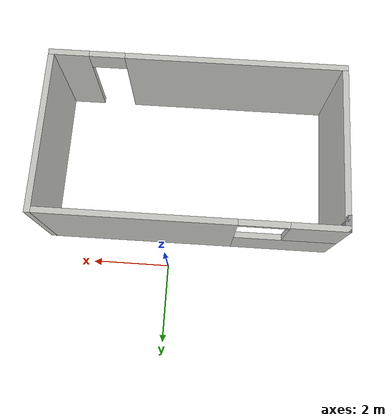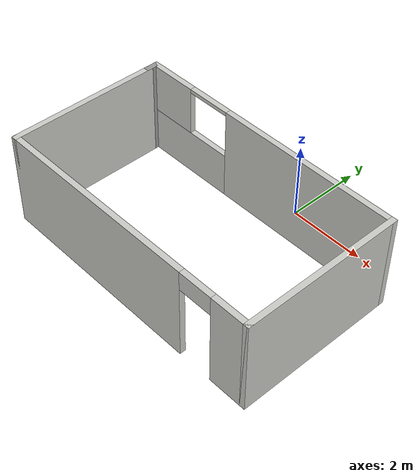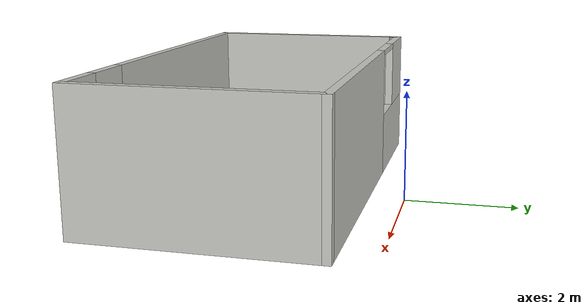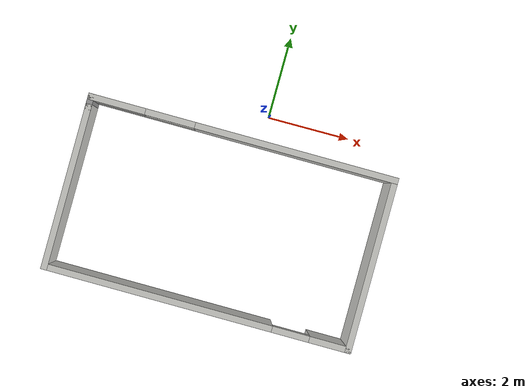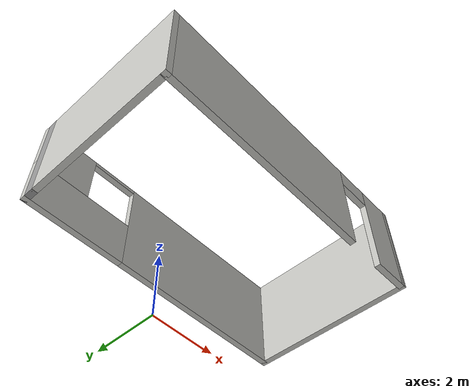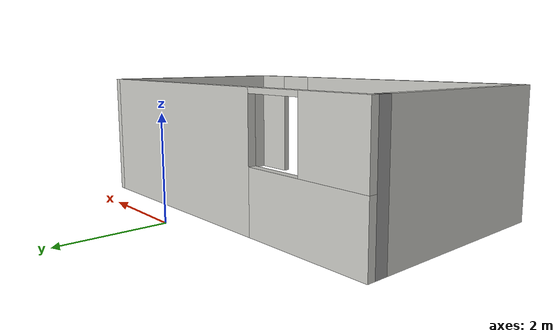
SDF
<?xml version='1.0'?>
<sdf version='1.6'>
  <model name='ur5_kitchentest'>
    <pose frame=''>-0.485 -2.4475 0 0 -0 0</pose>
    <link name='Wall_10'>
      <pose frame=''>-0 1.7275 0 0 -0 3.14159</pose>
      <visual name='Wall_10_Visual_0'>
        <pose frame=''>-1.2925 0 1.25 0 -0 0</pose>
        <geometry>
          <box>
            <size>4.915 0.15 2.5</size>
          </box>
        </geometry>
        <material>
          <script>
            <uri>file://media/materials/scripts/gazebo.material</uri>
            <name>Gazebo/CeilingTiled</name>
          </script>
          <ambient>0.760784 0.662745 0.627451 1</ambient>
        </material>
        <meta>
          <layer>0</layer>
        </meta>
      </visual>
      <collision name='Wall_10_Collision_0'>
        <geometry>
          <box>
            <size>4.915 0.15 2.5</size>
          </box>
        </geometry>
        <pose frame=''>-1.2925 0 1.25 0 -0 0</pose>
      </collision>
      <visual name='Wall_10_Visual_1'>
        <pose frame=''>2.4575 0 0.6 0 -0 0</pose>
        <geometry>
          <box>
            <size>2.585 0.15 1.2</size>
          </box>
        </geometry>
        <material>
          <script>
            <uri>file://media/materials/scripts/gazebo.material</uri>
            <name>Gazebo/CeilingTiled</name>
          </script>
          <ambient>0.760784 0.662745 0.627451 1</ambient>
        </material>
        <meta>
          <layer>0</layer>
        </meta>
      </visual>
      <collision name='Wall_10_Collision_1'>
        <geometry>
          <box>
            <size>2.585 0.15 1.2</size>
          </box>
        </geometry>
        <pose frame=''>2.4575 0 0.6 0 -0 0</pose>
      </collision>
      <visual name='Wall_10_Visual_2'>
        <pose frame=''>3.0575 0 1.85 0 -0 0</pose>
        <geometry>
          <box>
            <size>1.385 0.15 1.3</size>
          </box>
        </geometry>
        <material>
          <script>
            <uri>file://media/materials/scripts/gazebo.material</uri>
            <name>Gazebo/CeilingTiled</name>
          </script>
          <ambient>0.760784 0.662745 0.627451 1</ambient>
        </material>
        <meta>
          <layer>0</layer>
        </meta>
      </visual>
      <collision name='Wall_10_Collision_2'>
        <geometry>
          <box>
            <size>1.385 0.15 1.3</size>
          </box>
        </geometry>
        <pose frame=''>3.0575 0 1.85 0 -0 0</pose>
      </collision>
      <visual name='Wall_10_Visual_3'>
        <pose frame=''>1.765 0 2.45 0 -0 0</pose>
        <geometry>
          <box>
            <size>1.2 0.15 0.1</size>
          </box>
        </geometry>
        <material>
          <script>
            <uri>file://media/materials/scripts/gazebo.material</uri>
            <name>Gazebo/CeilingTiled</name>
          </script>
          <ambient>0.760784 0.662745 0.627451 1</ambient>
        </material>
        <meta>
          <layer>0</layer>
        </meta>
      </visual>
      <collision name='Wall_10_Collision_3'>
        <geometry>
          <box>
            <size>1.2 0.15 0.1</size>
          </box>
        </geometry>
        <pose frame=''>1.765 0 2.45 0 -0 0</pose>
      </collision>
    </link>
    <link name='Wall_11'>
      <collision name='Wall_11_Collision'>
        <geometry>
          <box>
            <size>0.4 0.15 2.5</size>
          </box>
        </geometry>
        <pose frame=''>0 0 1.25 0 -0 0</pose>
      </collision>
      <visual name='Wall_11_Visual'>
        <pose frame=''>0 0 1.25 0 -0 0</pose>
        <geometry>
          <box>
            <size>0.4 0.15 2.5</size>
          </box>
        </geometry>
        <material>
          <script>
            <uri>file://media/materials/scripts/gazebo.material</uri>
            <name>Gazebo/Grey</name>
          </script>
          <ambient>1 1 1 1</ambient>
        </material>
        <meta>
          <layer>0</layer>
        </meta>
      </visual>
      <pose frame=''>-3.675 1.6025 0 0 -0 -1.5708</pose>
    </link>
    <link name='Wall_7'>
      <collision name='Wall_7_Collision'>
        <geometry>
          <box>
            <size>4 0.15 2.5</size>
          </box>
        </geometry>
        <pose frame=''>0 0 1.25 0 -0 0</pose>
      </collision>
      <visual name='Wall_7_Visual'>
        <pose frame=''>0 0 1.25 0 -0 0</pose>
        <geometry>
          <box>
            <size>4 0.15 2.5</size>
          </box>
        </geometry>
        <material>
          <script>
            <uri>file://media/materials/scripts/gazebo.material</uri>
            <name>Gazebo/CeilingTiled</name>
          </script>
          <ambient>0.760784 0.662745 0.627451 1</ambient>
        </material>
        <meta>
          <layer>0</layer>
        </meta>
      </visual>
      <pose frame=''>-3.675 -0.4475 0 0 -0 -1.5708</pose>
    </link>
    <link name='Wall_8'>
      <pose frame=''>-0 -2.3725 0 0 -0 0</pose>
      <visual name='Wall_8_Visual_0'>
        <pose frame=''>-0.9625 0 1.25 0 -0 0</pose>
        <geometry>
          <box>
            <size>5.575 0.15 2.5</size>
          </box>
        </geometry>
        <material>
          <script>
            <uri>file://media/materials/scripts/gazebo.material</uri>
            <name>Gazebo/CeilingTiled</name>
          </script>
          <ambient>0.760784 0.662745 0.627451 1</ambient>
        </material>
        <meta>
          <layer>0</layer>
        </meta>
      </visual>
      <collision name='Wall_8_Collision_0'>
        <geometry>
          <box>
            <size>5.575 0.15 2.5</size>
          </box>
        </geometry>
        <pose frame=''>-0.9625 0 1.25 0 -0 0</pose>
      </collision>
      <visual name='Wall_8_Visual_1'>
        <pose frame=''>3.2375 0 1.25 0 -0 0</pose>
        <geometry>
          <box>
            <size>1.025 0.15 2.5</size>
          </box>
        </geometry>
        <material>
          <script>
            <uri>file://media/materials/scripts/gazebo.material</uri>
            <name>Gazebo/CeilingTiled</name>
          </script>
          <ambient>0.760784 0.662745 0.627451 1</ambient>
        </material>
        <meta>
          <layer>0</layer>
        </meta>
      </visual>
      <collision name='Wall_8_Collision_1'>
        <geometry>
          <box>
            <size>1.025 0.15 2.5</size>
          </box>
        </geometry>
        <pose frame=''>3.2375 0 1.25 0 -0 0</pose>
      </collision>
      <visual name='Wall_8_Visual_2'>
        <pose frame=''>2.275 0 2.25 0 -0 0</pose>
        <geometry>
          <box>
            <size>0.9 0.15 0.5</size>
          </box>
        </geometry>
        <material>
          <script>
            <uri>file://media/materials/scripts/gazebo.material</uri>
            <name>Gazebo/CeilingTiled</name>
          </script>
          <ambient>0.760784 0.662745 0.627451 1</ambient>
        </material>
        <meta>
          <layer>0</layer>
        </meta>
      </visual>
      <collision name='Wall_8_Collision_2'>
        <geometry>
          <box>
            <size>0.9 0.15 0.5</size>
          </box>
        </geometry>
        <pose frame=''>2.275 0 2.25 0 -0 0</pose>
      </collision>
    </link>
    <link name='Wall_9'>
      <collision name='Wall_9_Collision'>
        <geometry>
          <box>
            <size>4.25 0.15 2.5</size>
          </box>
        </geometry>
        <pose frame=''>0 0 1.25 0 -0 0</pose>
      </collision>
      <visual name='Wall_9_Visual'>
        <pose frame=''>0 0 1.25 0 -0 0</pose>
        <geometry>
          <box>
            <size>4.25 0.15 2.5</size>
          </box>
        </geometry>
        <material>
          <script>
            <uri>file://media/materials/scripts/gazebo.material</uri>
            <name>Gazebo/CeilingTiled</name>
          </script>
          <ambient>0.760784 0.662745 0.627451 1</ambient>
        </material>
        <meta>
          <layer>0</layer>
        </meta>
      </visual>
      <pose frame=''>3.675 -0.3225 0 0 -0 1.5708</pose>
    </link>
    <static>1</static>
  </model>
</sdf>
